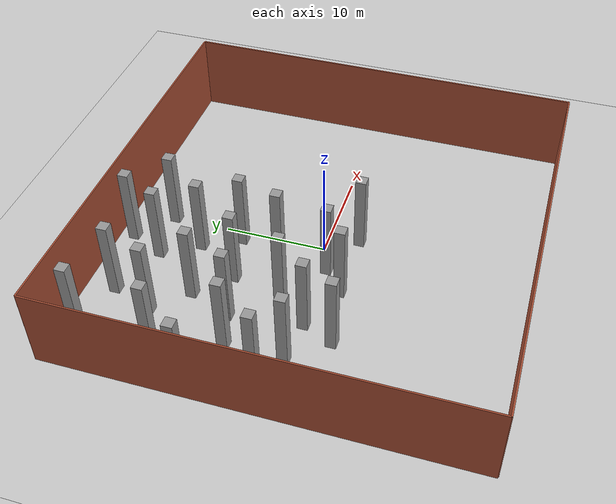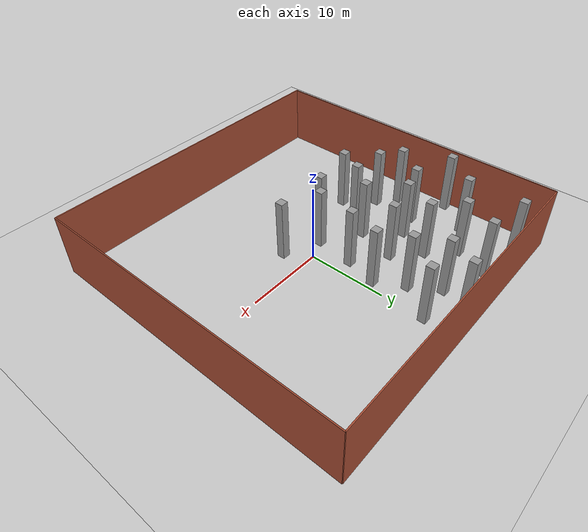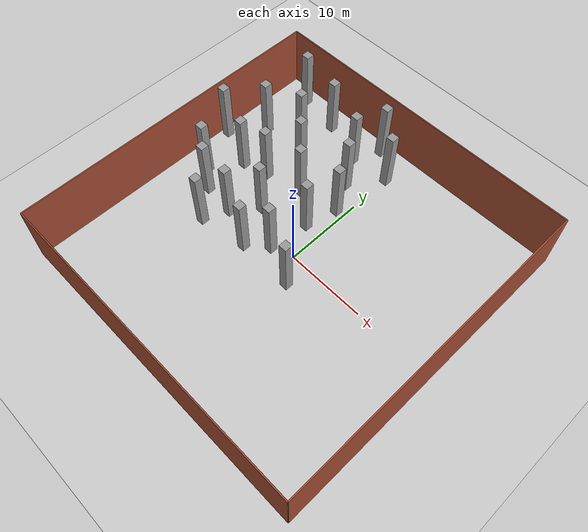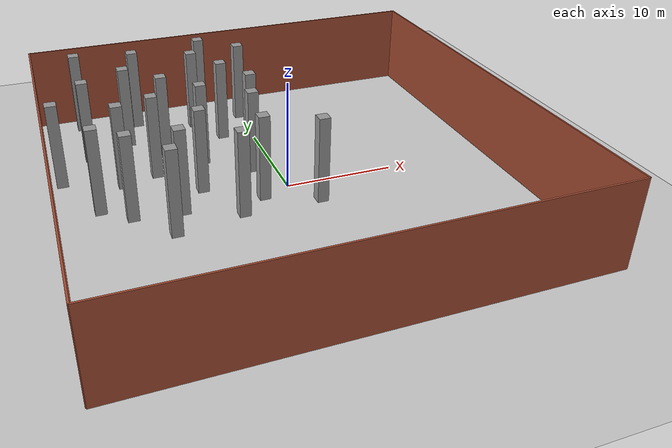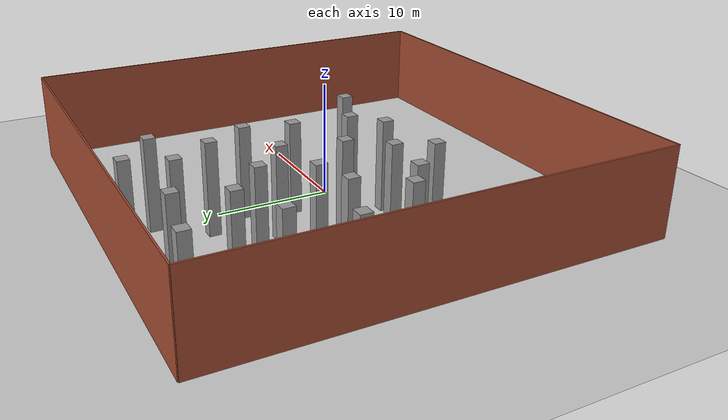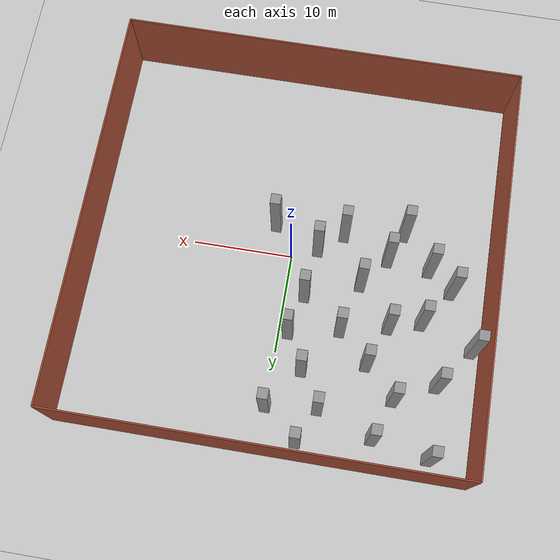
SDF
<sdf version="1.7">
 <world name="default">
  <model name="ground_plane">
   <static>1</static>
   <link name="link">
    <collision name="collision">
     <geometry><plane><normal>0 0 1</normal><size>100 100</size></plane></geometry>
     <surface>
      <contact><collide_bitmask>65535</collide_bitmask></contact>
      <friction><ode><mu>100</mu><mu2>50</mu2></ode></friction>
     </surface>
    </collision>
    <visual name="visual">
     <cast_shadows>0</cast_shadows>
     <geometry><plane><normal>0 0 1</normal><size>100 100</size></plane></geometry>
     <material>
      <script><uri>file://media/materials/scripts/gazebo.material</uri><name>Gazebo/Grey</name></script>
     </material>
    </visual>
   </link>
  </model>
  <model name="sim_room_square">
   <link name="Wall_14">
    <collision name="Wall_14_Collision">
     <geometry><box><size>40 0.15 8</size></box></geometry>
     <pose>0 0 4 0 -0 0</pose>
    </collision>
    <visual name="Wall_14_Visual">
     <pose>0 0 4 0 -0 0</pose>
     <geometry><box><size>40 0.15 8</size></box></geometry>
     <material>
      <script><uri>file://media/materials/scripts/gazebo.material</uri><name>Gazebo/Bricks</name></script>
      <ambient>1 1 1 1</ambient>
     </material>
     <meta><layer>0</layer></meta>
    </visual>
    <pose>20 -0 0 0 -0 -1.5708</pose>
   </link>
   <link name="Wall_15">
    <collision name="Wall_15_Collision">
     <geometry><box><size>40 0.15 8</size></box></geometry>
     <pose>0 0 4 0 -0 0</pose>
    </collision>
    <visual name="Wall_15_Visual">
     <pose>0 0 4 0 -0 0</pose>
     <geometry><box><size>40 0.15 8</size></box></geometry>
     <material>
      <script><uri>file://media/materials/scripts/gazebo.material</uri><name>Gazebo/Bricks</name></script>
      <ambient>1 1 1 1</ambient>
     </material>
     <meta><layer>0</layer></meta>
    </visual>
    <pose>0 -20 0 0 -0 3.14159</pose>
   </link>
   <link name="Wall_16">
    <collision name="Wall_16_Collision">
     <geometry><box><size>40 0.15 8</size></box></geometry>
     <pose>0 0 4 0 -0 0</pose>
    </collision>
    <visual name="Wall_16_Visual">
     <pose>0 0 4 0 -0 0</pose>
     <geometry><box><size>40 0.15 8</size></box></geometry>
     <material>
      <script><uri>file://media/materials/scripts/gazebo.material</uri><name>Gazebo/Bricks</name></script>
      <ambient>1 1 1 1</ambient>
     </material>
     <meta><layer>0</layer></meta>
    </visual>
    <pose>-20 -0 0 0 -0 1.5708</pose>
   </link>
   <link name="Wall_19">
    <collision name="Wall_19_Collision">
     <geometry><box><size>40 0.15 8</size></box></geometry>
     <pose>0 0 4 0 -0 0</pose>
    </collision>
    <visual name="Wall_19_Visual">
     <pose>0 0 4 0 -0 0</pose>
     <geometry><box><size>40 0.15 8</size></box></geometry>
     <material>
      <script><uri>file://media/materials/scripts/gazebo.material</uri><name>Gazebo/Bricks</name></script>
      <ambient>1 1 1 1</ambient>
     </material>
     <meta><layer>0</layer></meta>
    </visual>
    <pose>0 20 0 0 -0 0</pose>
   </link>
   <static>1</static>
  </model>
  <model name="unit_box_static">
   <link name="link">
    <inertial>
     <mass>1</mass>
     <inertia>
      <ixx>0.166667</ixx>
      <ixy>0</ixy>
      <ixz>0</ixz>
      <iyy>0.166667</iyy>
      <iyz>0</iyz>
      <izz>0.166667</izz>
     </inertia>
    </inertial>
    <visual name="visual">
     <geometry><box><size>1 1 8</size></box></geometry>
     <material>
      <script><name>Gazebo/Grey</name><uri>file://media/materials/scripts/gazebo.material</uri></script>
      <shader type="pixel"/>
     </material>
    </visual>
    <collision name="collision">
     <geometry><box><size>1 1 8</size></box></geometry>
     <surface>
      <friction>
       <ode><mu>1</mu><mu2>1</mu2><fdir1>0 0 0</fdir1><slip1>0</slip1><slip2>0</slip2></ode>
       <torsional>
        <coefficient>1</coefficient>
        <patch_radius>0</patch_radius>
        <surface_radius>0</surface_radius>
        <use_patch_radius>1</use_patch_radius>
        <ode><slip>0</slip></ode>
       </torsional>
      </friction>
      <bounce><restitution_coefficient>0</restitution_coefficient><threshold>1e+06</threshold></bounce>
      <contact>
       <collide_without_contact>0</collide_without_contact>
       <collide_without_contact_bitmask>1</collide_without_contact_bitmask>
       <collide_bitmask>1</collide_bitmask>
       <ode>
        <soft_cfm>0</soft_cfm>
        <soft_erp>0.2</soft_erp>
        <kp>1e+13</kp>
        <kd>1</kd>
        <max_vel>0.01</max_vel>
        <min_depth>0</min_depth>
       </ode>
       <bullet>
        <split_impulse>1</split_impulse>
        <split_impulse_penetration_threshold>-0.01</split_impulse_penetration_threshold>
        <soft_cfm>0</soft_cfm>
        <soft_erp>0.2</soft_erp>
        <kp>1e+13</kp>
        <kd>1</kd>
       </bullet>
      </contact>
     </surface>
    </collision>
   </link>
   <static>1</static>
   <pose>-2.89298 11.5277 4 0 -0 0</pose>
  </model>
  <model name="unit_box_static_clone">
   <link name="link">
    <inertial>
     <mass>1</mass>
     <inertia>
      <ixx>0.166667</ixx>
      <ixy>0</ixy>
      <ixz>0</ixz>
      <iyy>0.166667</iyy>
      <iyz>0</iyz>
      <izz>0.166667</izz>
     </inertia>
    </inertial>
    <visual name="visual">
     <geometry><box><size>1 1 8</size></box></geometry>
     <material>
      <script><name>Gazebo/Grey</name><uri>file://media/materials/scripts/gazebo.material</uri></script>
      <shader type="pixel"/>
     </material>
    </visual>
    <collision name="collision">
     <geometry><box><size>1 1 8</size></box></geometry>
     <surface>
      <friction>
       <ode><mu>1</mu><mu2>1</mu2><fdir1>0 0 0</fdir1><slip1>0</slip1><slip2>0</slip2></ode>
       <torsional>
        <coefficient>1</coefficient>
        <patch_radius>0</patch_radius>
        <surface_radius>0</surface_radius>
        <use_patch_radius>1</use_patch_radius>
        <ode><slip>0</slip></ode>
       </torsional>
      </friction>
      <bounce><restitution_coefficient>0</restitution_coefficient><threshold>1e+06</threshold></bounce>
      <contact>
       <collide_without_contact>0</collide_without_contact>
       <collide_without_contact_bitmask>1</collide_without_contact_bitmask>
       <collide_bitmask>1</collide_bitmask>
       <ode>
        <soft_cfm>0</soft_cfm>
        <soft_erp>0.2</soft_erp>
        <kp>1e+13</kp>
        <kd>1</kd>
        <max_vel>0.01</max_vel>
        <min_depth>0</min_depth>
       </ode>
       <bullet>
        <split_impulse>1</split_impulse>
        <split_impulse_penetration_threshold>-0.01</split_impulse_penetration_threshold>
        <soft_cfm>0</soft_cfm>
        <soft_erp>0.2</soft_erp>
        <kp>1e+13</kp>
        <kd>1</kd>
       </bullet>
      </contact>
     </surface>
    </collision>
   </link>
   <static>1</static>
   <pose>-1 8 4 0 -0 0</pose>
  </model>
  <model name="unit_box_static_clone_0">
   <link name="link">
    <inertial>
     <mass>1</mass>
     <inertia>
      <ixx>0.166667</ixx>
      <ixy>0</ixy>
      <ixz>0</ixz>
      <iyy>0.166667</iyy>
      <iyz>0</iyz>
      <izz>0.166667</izz>
     </inertia>
    </inertial>
    <visual name="visual">
     <geometry><box><size>1 1 8</size></box></geometry>
     <material>
      <script><name>Gazebo/Grey</name><uri>file://media/materials/scripts/gazebo.material</uri></script>
      <shader type="pixel"/>
     </material>
    </visual>
    <collision name="collision">
     <geometry><box><size>1 1 8</size></box></geometry>
     <surface>
      <friction>
       <ode><mu>1</mu><mu2>1</mu2><fdir1>0 0 0</fdir1><slip1>0</slip1><slip2>0</slip2></ode>
       <torsional>
        <coefficient>1</coefficient>
        <patch_radius>0</patch_radius>
        <surface_radius>0</surface_radius>
        <use_patch_radius>1</use_patch_radius>
        <ode><slip>0</slip></ode>
       </torsional>
      </friction>
      <bounce><restitution_coefficient>0</restitution_coefficient><threshold>1e+06</threshold></bounce>
      <contact>
       <collide_without_contact>0</collide_without_contact>
       <collide_without_contact_bitmask>1</collide_without_contact_bitmask>
       <collide_bitmask>1</collide_bitmask>
       <ode>
        <soft_cfm>0</soft_cfm>
        <soft_erp>0.2</soft_erp>
        <kp>1e+13</kp>
        <kd>1</kd>
        <max_vel>0.01</max_vel>
        <min_depth>0</min_depth>
       </ode>
       <bullet>
        <split_impulse>1</split_impulse>
        <split_impulse_penetration_threshold>-0.01</split_impulse_penetration_threshold>
        <soft_cfm>0</soft_cfm>
        <soft_erp>0.2</soft_erp>
        <kp>1e+13</kp>
        <kd>1</kd>
       </bullet>
      </contact>
     </surface>
    </collision>
   </link>
   <static>1</static>
   <pose>-2 4 4 0 -0 0</pose>
  </model>
  <model name="unit_box_static_clone_1">
   <link name="link">
    <inertial>
     <mass>1</mass>
     <inertia>
      <ixx>0.166667</ixx>
      <ixy>0</ixy>
      <ixz>0</ixz>
      <iyy>0.166667</iyy>
      <iyz>0</iyz>
      <izz>0.166667</izz>
     </inertia>
    </inertial>
    <visual name="visual">
     <geometry><box><size>1 1 8</size></box></geometry>
     <material>
      <script><name>Gazebo/Grey</name><uri>file://media/materials/scripts/gazebo.material</uri></script>
      <shader type="pixel"/>
     </material>
    </visual>
    <collision name="collision">
     <geometry><box><size>1 1 8</size></box></geometry>
     <surface>
      <friction>
       <ode><mu>1</mu><mu2>1</mu2><fdir1>0 0 0</fdir1><slip1>0</slip1><slip2>0</slip2></ode>
       <torsional>
        <coefficient>1</coefficient>
        <patch_radius>0</patch_radius>
        <surface_radius>0</surface_radius>
        <use_patch_radius>1</use_patch_radius>
        <ode><slip>0</slip></ode>
       </torsional>
      </friction>
      <bounce><restitution_coefficient>0</restitution_coefficient><threshold>1e+06</threshold></bounce>
      <contact>
       <collide_without_contact>0</collide_without_contact>
       <collide_without_contact_bitmask>1</collide_without_contact_bitmask>
       <collide_bitmask>1</collide_bitmask>
       <ode>
        <soft_cfm>0</soft_cfm>
        <soft_erp>0.2</soft_erp>
        <kp>1e+13</kp>
        <kd>1</kd>
        <max_vel>0.01</max_vel>
        <min_depth>0</min_depth>
       </ode>
       <bullet>
        <split_impulse>1</split_impulse>
        <split_impulse_penetration_threshold>-0.01</split_impulse_penetration_threshold>
        <soft_cfm>0</soft_cfm>
        <soft_erp>0.2</soft_erp>
        <kp>1e+13</kp>
        <kd>1</kd>
       </bullet>
      </contact>
     </surface>
    </collision>
   </link>
   <static>1</static>
   <pose>-7.32735 2 4 0 -0 0</pose>
  </model>
  <model name="unit_box_static_clone_2">
   <link name="link">
    <inertial>
     <mass>1</mass>
     <inertia>
      <ixx>0.166667</ixx>
      <ixy>0</ixy>
      <ixz>0</ixz>
      <iyy>0.166667</iyy>
      <iyz>0</iyz>
      <izz>0.166667</izz>
     </inertia>
    </inertial>
    <visual name="visual">
     <geometry><box><size>1 1 8</size></box></geometry>
     <material>
      <script><name>Gazebo/Grey</name><uri>file://media/materials/scripts/gazebo.material</uri></script>
      <shader type="pixel"/>
     </material>
    </visual>
    <collision name="collision">
     <geometry><box><size>1 1 8</size></box></geometry>
     <surface>
      <friction>
       <ode><mu>1</mu><mu2>1</mu2><fdir1>0 0 0</fdir1><slip1>0</slip1><slip2>0</slip2></ode>
       <torsional>
        <coefficient>1</coefficient>
        <patch_radius>0</patch_radius>
        <surface_radius>0</surface_radius>
        <use_patch_radius>1</use_patch_radius>
        <ode><slip>0</slip></ode>
       </torsional>
      </friction>
      <bounce><restitution_coefficient>0</restitution_coefficient><threshold>1e+06</threshold></bounce>
      <contact>
       <collide_without_contact>0</collide_without_contact>
       <collide_without_contact_bitmask>1</collide_without_contact_bitmask>
       <collide_bitmask>1</collide_bitmask>
       <ode>
        <soft_cfm>0</soft_cfm>
        <soft_erp>0.2</soft_erp>
        <kp>1e+13</kp>
        <kd>1</kd>
        <max_vel>0.01</max_vel>
        <min_depth>0</min_depth>
       </ode>
       <bullet>
        <split_impulse>1</split_impulse>
        <split_impulse_penetration_threshold>-0.01</split_impulse_penetration_threshold>
        <soft_cfm>0</soft_cfm>
        <soft_erp>0.2</soft_erp>
        <kp>1e+13</kp>
        <kd>1</kd>
       </bullet>
      </contact>
     </surface>
    </collision>
   </link>
   <static>1</static>
   <pose>-10.6403 5.9324 4 0 -0 0</pose>
  </model>
  <model name="unit_box_static_clone_3">
   <link name="link">
    <inertial>
     <mass>1</mass>
     <inertia>
      <ixx>0.166667</ixx>
      <ixy>0</ixy>
      <ixz>0</ixz>
      <iyy>0.166667</iyy>
      <iyz>0</iyz>
      <izz>0.166667</izz>
     </inertia>
    </inertial>
    <visual name="visual">
     <geometry><box><size>1 1 8</size></box></geometry>
     <material>
      <script><name>Gazebo/Grey</name><uri>file://media/materials/scripts/gazebo.material</uri></script>
      <shader type="pixel"/>
     </material>
    </visual>
    <collision name="collision">
     <geometry><box><size>1 1 8</size></box></geometry>
     <surface>
      <friction>
       <ode><mu>1</mu><mu2>1</mu2><fdir1>0 0 0</fdir1><slip1>0</slip1><slip2>0</slip2></ode>
       <torsional>
        <coefficient>1</coefficient>
        <patch_radius>0</patch_radius>
        <surface_radius>0</surface_radius>
        <use_patch_radius>1</use_patch_radius>
        <ode><slip>0</slip></ode>
       </torsional>
      </friction>
      <bounce><restitution_coefficient>0</restitution_coefficient><threshold>1e+06</threshold></bounce>
      <contact>
       <collide_without_contact>0</collide_without_contact>
       <collide_without_contact_bitmask>1</collide_without_contact_bitmask>
       <collide_bitmask>1</collide_bitmask>
       <ode>
        <soft_cfm>0</soft_cfm>
        <soft_erp>0.2</soft_erp>
        <kp>1e+13</kp>
        <kd>1</kd>
        <max_vel>0.01</max_vel>
        <min_depth>0</min_depth>
       </ode>
       <bullet>
        <split_impulse>1</split_impulse>
        <split_impulse_penetration_threshold>-0.01</split_impulse_penetration_threshold>
        <soft_cfm>0</soft_cfm>
        <soft_erp>0.2</soft_erp>
        <kp>1e+13</kp>
        <kd>1</kd>
       </bullet>
      </contact>
     </surface>
    </collision>
   </link>
   <static>1</static>
   <pose>-13.8066 5.02416 4 0 -0 0</pose>
  </model>
  <model name="unit_box_static_clone_4">
   <link name="link">
    <inertial>
     <mass>1</mass>
     <inertia>
      <ixx>0.166667</ixx>
      <ixy>0</ixy>
      <ixz>0</ixz>
      <iyy>0.166667</iyy>
      <iyz>0</iyz>
      <izz>0.166667</izz>
     </inertia>
    </inertial>
    <visual name="visual">
     <geometry><box><size>1 1 8</size></box></geometry>
     <material>
      <script><name>Gazebo/Grey</name><uri>file://media/materials/scripts/gazebo.material</uri></script>
      <shader type="pixel"/>
     </material>
    </visual>
    <collision name="collision">
     <geometry><box><size>1 1 8</size></box></geometry>
     <surface>
      <friction>
       <ode><mu>1</mu><mu2>1</mu2><fdir1>0 0 0</fdir1><slip1>0</slip1><slip2>0</slip2></ode>
       <torsional>
        <coefficient>1</coefficient>
        <patch_radius>0</patch_radius>
        <surface_radius>0</surface_radius>
        <use_patch_radius>1</use_patch_radius>
        <ode><slip>0</slip></ode>
       </torsional>
      </friction>
      <bounce><restitution_coefficient>0</restitution_coefficient><threshold>1e+06</threshold></bounce>
      <contact>
       <collide_without_contact>0</collide_without_contact>
       <collide_without_contact_bitmask>1</collide_without_contact_bitmask>
       <collide_bitmask>1</collide_bitmask>
       <ode>
        <soft_cfm>0</soft_cfm>
        <soft_erp>0.2</soft_erp>
        <kp>1e+13</kp>
        <kd>1</kd>
        <max_vel>0.01</max_vel>
        <min_depth>0</min_depth>
       </ode>
       <bullet>
        <split_impulse>1</split_impulse>
        <split_impulse_penetration_threshold>-0.01</split_impulse_penetration_threshold>
        <soft_cfm>0</soft_cfm>
        <soft_erp>0.2</soft_erp>
        <kp>1e+13</kp>
        <kd>1</kd>
       </bullet>
      </contact>
     </surface>
    </collision>
   </link>
   <static>1</static>
   <pose>-11 -4 4 0 -0 0</pose>
  </model>
  <model name="unit_box_static_clone_5">
   <link name="link">
    <inertial>
     <mass>1</mass>
     <inertia>
      <ixx>0.166667</ixx>
      <ixy>0</ixy>
      <ixz>0</ixz>
      <iyy>0.166667</iyy>
      <iyz>0</iyz>
      <izz>0.166667</izz>
     </inertia>
    </inertial>
    <visual name="visual">
     <geometry><box><size>1 1 8</size></box></geometry>
     <material>
      <script><name>Gazebo/Grey</name><uri>file://media/materials/scripts/gazebo.material</uri></script>
      <shader type="pixel"/>
     </material>
    </visual>
    <collision name="collision">
     <geometry><box><size>1 1 8</size></box></geometry>
     <surface>
      <friction>
       <ode><mu>1</mu><mu2>1</mu2><fdir1>0 0 0</fdir1><slip1>0</slip1><slip2>0</slip2></ode>
       <torsional>
        <coefficient>1</coefficient>
        <patch_radius>0</patch_radius>
        <surface_radius>0</surface_radius>
        <use_patch_radius>1</use_patch_radius>
        <ode><slip>0</slip></ode>
       </torsional>
      </friction>
      <bounce><restitution_coefficient>0</restitution_coefficient><threshold>1e+06</threshold></bounce>
      <contact>
       <collide_without_contact>0</collide_without_contact>
       <collide_without_contact_bitmask>1</collide_without_contact_bitmask>
       <collide_bitmask>1</collide_bitmask>
       <ode>
        <soft_cfm>0</soft_cfm>
        <soft_erp>0.2</soft_erp>
        <kp>1e+13</kp>
        <kd>1</kd>
        <max_vel>0.01</max_vel>
        <min_depth>0</min_depth>
       </ode>
       <bullet>
        <split_impulse>1</split_impulse>
        <split_impulse_penetration_threshold>-0.01</split_impulse_penetration_threshold>
        <soft_cfm>0</soft_cfm>
        <soft_erp>0.2</soft_erp>
        <kp>1e+13</kp>
        <kd>1</kd>
       </bullet>
      </contact>
     </surface>
    </collision>
   </link>
   <static>1</static>
   <pose>-9.69968 -1.00435 4 0 -0 0</pose>
  </model>
  <model name="unit_box_static_clone_6">
   <link name="link">
    <inertial>
     <mass>1</mass>
     <inertia>
      <ixx>0.166667</ixx>
      <ixy>0</ixy>
      <ixz>0</ixz>
      <iyy>0.166667</iyy>
      <iyz>0</iyz>
      <izz>0.166667</izz>
     </inertia>
    </inertial>
    <visual name="visual">
     <geometry><box><size>1 1 8</size></box></geometry>
     <material>
      <script><name>Gazebo/Grey</name><uri>file://media/materials/scripts/gazebo.material</uri></script>
      <shader type="pixel"/>
     </material>
    </visual>
    <collision name="collision">
     <geometry><box><size>1 1 8</size></box></geometry>
     <surface>
      <friction>
       <ode><mu>1</mu><mu2>1</mu2><fdir1>0 0 0</fdir1><slip1>0</slip1><slip2>0</slip2></ode>
       <torsional>
        <coefficient>1</coefficient>
        <patch_radius>0</patch_radius>
        <surface_radius>0</surface_radius>
        <use_patch_radius>1</use_patch_radius>
        <ode><slip>0</slip></ode>
       </torsional>
      </friction>
      <bounce><restitution_coefficient>0</restitution_coefficient><threshold>1e+06</threshold></bounce>
      <contact>
       <collide_without_contact>0</collide_without_contact>
       <collide_without_contact_bitmask>1</collide_without_contact_bitmask>
       <collide_bitmask>1</collide_bitmask>
       <ode>
        <soft_cfm>0</soft_cfm>
        <soft_erp>0.2</soft_erp>
        <kp>1e+13</kp>
        <kd>1</kd>
        <max_vel>0.01</max_vel>
        <min_depth>0</min_depth>
       </ode>
       <bullet>
        <split_impulse>1</split_impulse>
        <split_impulse_penetration_threshold>-0.01</split_impulse_penetration_threshold>
        <soft_cfm>0</soft_cfm>
        <soft_erp>0.2</soft_erp>
        <kp>1e+13</kp>
        <kd>1</kd>
       </bullet>
      </contact>
     </surface>
    </collision>
   </link>
   <static>1</static>
   <pose>-5 -3 4 0 -0 0</pose>
  </model>
  <model name="unit_box_static_clone_7">
   <link name="link">
    <inertial>
     <mass>1</mass>
     <inertia>
      <ixx>0.166667</ixx>
      <ixy>0</ixy>
      <ixz>0</ixz>
      <iyy>0.166667</iyy>
      <iyz>0</iyz>
      <izz>0.166667</izz>
     </inertia>
    </inertial>
    <visual name="visual">
     <geometry><box><size>1 1 8</size></box></geometry>
     <material>
      <script><name>Gazebo/Grey</name><uri>file://media/materials/scripts/gazebo.material</uri></script>
      <shader type="pixel"/>
     </material>
    </visual>
    <collision name="collision">
     <geometry><box><size>1 1 8</size></box></geometry>
     <surface>
      <friction>
       <ode><mu>1</mu><mu2>1</mu2><fdir1>0 0 0</fdir1><slip1>0</slip1><slip2>0</slip2></ode>
       <torsional>
        <coefficient>1</coefficient>
        <patch_radius>0</patch_radius>
        <surface_radius>0</surface_radius>
        <use_patch_radius>1</use_patch_radius>
        <ode><slip>0</slip></ode>
       </torsional>
      </friction>
      <bounce><restitution_coefficient>0</restitution_coefficient><threshold>1e+06</threshold></bounce>
      <contact>
       <collide_without_contact>0</collide_without_contact>
       <collide_without_contact_bitmask>1</collide_without_contact_bitmask>
       <collide_bitmask>1</collide_bitmask>
       <ode>
        <soft_cfm>0</soft_cfm>
        <soft_erp>0.2</soft_erp>
        <kp>1e+13</kp>
        <kd>1</kd>
        <max_vel>0.01</max_vel>
        <min_depth>0</min_depth>
       </ode>
       <bullet>
        <split_impulse>1</split_impulse>
        <split_impulse_penetration_threshold>-0.01</split_impulse_penetration_threshold>
        <soft_cfm>0</soft_cfm>
        <soft_erp>0.2</soft_erp>
        <kp>1e+13</kp>
        <kd>1</kd>
       </bullet>
      </contact>
     </surface>
    </collision>
   </link>
   <static>1</static>
   <pose>-2.58663 -1 4 0 -0 0</pose>
  </model>
  <model name="unit_box_static_clone_31">
   <link name="link">
    <inertial>
     <mass>1</mass>
     <inertia>
      <ixx>0.166667</ixx>
      <ixy>0</ixy>
      <ixz>0</ixz>
      <iyy>0.166667</iyy>
      <iyz>0</iyz>
      <izz>0.166667</izz>
     </inertia>
    </inertial>
    <visual name="visual">
     <geometry><box><size>1 1 8</size></box></geometry>
     <material>
      <script><name>Gazebo/Grey</name><uri>file://media/materials/scripts/gazebo.material</uri></script>
      <shader type="pixel"/>
     </material>
    </visual>
    <collision name="collision">
     <geometry><box><size>1 1 8</size></box></geometry>
     <surface>
      <friction>
       <ode><mu>1</mu><mu2>1</mu2><fdir1>0 0 0</fdir1><slip1>0</slip1><slip2>0</slip2></ode>
       <torsional>
        <coefficient>1</coefficient>
        <patch_radius>0</patch_radius>
        <surface_radius>0</surface_radius>
        <use_patch_radius>1</use_patch_radius>
        <ode><slip>0</slip></ode>
       </torsional>
      </friction>
      <bounce><restitution_coefficient>0</restitution_coefficient><threshold>1e+06</threshold></bounce>
      <contact>
       <collide_without_contact>0</collide_without_contact>
       <collide_without_contact_bitmask>1</collide_without_contact_bitmask>
       <collide_bitmask>1</collide_bitmask>
       <ode>
        <soft_cfm>0</soft_cfm>
        <soft_erp>0.2</soft_erp>
        <kp>1e+13</kp>
        <kd>1</kd>
        <max_vel>0.01</max_vel>
        <min_depth>0</min_depth>
       </ode>
       <bullet>
        <split_impulse>1</split_impulse>
        <split_impulse_penetration_threshold>-0.01</split_impulse_penetration_threshold>
        <soft_cfm>0</soft_cfm>
        <soft_erp>0.2</soft_erp>
        <kp>1e+13</kp>
        <kd>1</kd>
       </bullet>
      </contact>
     </surface>
    </collision>
   </link>
   <static>1</static>
   <pose>-5 15 4 0 -0 0</pose>
  </model>
  <model name="unit_box_static_clone_32">
   <link name="link">
    <inertial>
     <mass>1</mass>
     <inertia>
      <ixx>0.166667</ixx>
      <ixy>0</ixy>
      <ixz>0</ixz>
      <iyy>0.166667</iyy>
      <iyz>0</iyz>
      <izz>0.166667</izz>
     </inertia>
    </inertial>
    <visual name="visual">
     <geometry><box><size>1 1 8</size></box></geometry>
     <material>
      <script><name>Gazebo/Grey</name><uri>file://media/materials/scripts/gazebo.material</uri></script>
      <shader type="pixel"/>
     </material>
    </visual>
    <collision name="collision">
     <geometry><box><size>1 1 8</size></box></geometry>
     <surface>
      <friction>
       <ode><mu>1</mu><mu2>1</mu2><fdir1>0 0 0</fdir1><slip1>0</slip1><slip2>0</slip2></ode>
       <torsional>
        <coefficient>1</coefficient>
        <patch_radius>0</patch_radius>
        <surface_radius>0</surface_radius>
        <use_patch_radius>1</use_patch_radius>
        <ode><slip>0</slip></ode>
       </torsional>
      </friction>
      <bounce><restitution_coefficient>0</restitution_coefficient><threshold>1e+06</threshold></bounce>
      <contact>
       <collide_without_contact>0</collide_without_contact>
       <collide_without_contact_bitmask>1</collide_without_contact_bitmask>
       <collide_bitmask>1</collide_bitmask>
       <ode>
        <soft_cfm>0</soft_cfm>
        <soft_erp>0.2</soft_erp>
        <kp>1e+13</kp>
        <kd>1</kd>
        <max_vel>0.01</max_vel>
        <min_depth>0</min_depth>
       </ode>
       <bullet>
        <split_impulse>1</split_impulse>
        <split_impulse_penetration_threshold>-0.01</split_impulse_penetration_threshold>
        <soft_cfm>0</soft_cfm>
        <soft_erp>0.2</soft_erp>
        <kp>1e+13</kp>
        <kd>1</kd>
       </bullet>
      </contact>
     </surface>
    </collision>
   </link>
   <static>1</static>
   <pose>-12 13 4 0 -0 0</pose>
  </model>
  <model name="unit_box_static_clone_33">
   <link name="link">
    <inertial>
     <mass>1</mass>
     <inertia>
      <ixx>0.166667</ixx>
      <ixy>0</ixy>
      <ixz>0</ixz>
      <iyy>0.166667</iyy>
      <iyz>0</iyz>
      <izz>0.166667</izz>
     </inertia>
    </inertial>
    <visual name="visual">
     <geometry><box><size>1 1 8</size></box></geometry>
     <material>
      <script><name>Gazebo/Grey</name><uri>file://media/materials/scripts/gazebo.material</uri></script>
      <shader type="pixel"/>
     </material>
    </visual>
    <collision name="collision">
     <geometry><box><size>1 1 8</size></box></geometry>
     <surface>
      <friction>
       <ode><mu>1</mu><mu2>1</mu2><fdir1>0 0 0</fdir1><slip1>0</slip1><slip2>0</slip2></ode>
       <torsional>
        <coefficient>1</coefficient>
        <patch_radius>0</patch_radius>
        <surface_radius>0</surface_radius>
        <use_patch_radius>1</use_patch_radius>
        <ode><slip>0</slip></ode>
       </torsional>
      </friction>
      <bounce><restitution_coefficient>0</restitution_coefficient><threshold>1e+06</threshold></bounce>
      <contact>
       <collide_without_contact>0</collide_without_contact>
       <collide_without_contact_bitmask>1</collide_without_contact_bitmask>
       <collide_bitmask>1</collide_bitmask>
       <ode>
        <soft_cfm>0</soft_cfm>
        <soft_erp>0.2</soft_erp>
        <kp>1e+13</kp>
        <kd>1</kd>
        <max_vel>0.01</max_vel>
        <min_depth>0</min_depth>
       </ode>
       <bullet>
        <split_impulse>1</split_impulse>
        <split_impulse_penetration_threshold>-0.01</split_impulse_penetration_threshold>
        <soft_cfm>0</soft_cfm>
        <soft_erp>0.2</soft_erp>
        <kp>1e+13</kp>
        <kd>1</kd>
       </bullet>
      </contact>
     </surface>
    </collision>
   </link>
   <static>1</static>
   <pose>-16 11 4 0 -0 0</pose>
  </model>
  <model name="unit_box_static_clone_34">
   <link name="link">
    <inertial>
     <mass>1</mass>
     <inertia>
      <ixx>0.166667</ixx>
      <ixy>0</ixy>
      <ixz>0</ixz>
      <iyy>0.166667</iyy>
      <iyz>0</iyz>
      <izz>0.166667</izz>
     </inertia>
    </inertial>
    <visual name="visual">
     <geometry><box><size>1 1 8</size></box></geometry>
     <material>
      <script><name>Gazebo/Grey</name><uri>file://media/materials/scripts/gazebo.material</uri></script>
      <shader type="pixel"/>
     </material>
    </visual>
    <collision name="collision">
     <geometry><box><size>1 1 8</size></box></geometry>
     <surface>
      <friction>
       <ode><mu>1</mu><mu2>1</mu2><fdir1>0 0 0</fdir1><slip1>0</slip1><slip2>0</slip2></ode>
       <torsional>
        <coefficient>1</coefficient>
        <patch_radius>0</patch_radius>
        <surface_radius>0</surface_radius>
        <use_patch_radius>1</use_patch_radius>
        <ode><slip>0</slip></ode>
       </torsional>
      </friction>
      <bounce><restitution_coefficient>0</restitution_coefficient><threshold>1e+06</threshold></bounce>
      <contact>
       <collide_without_contact>0</collide_without_contact>
       <collide_without_contact_bitmask>1</collide_without_contact_bitmask>
       <collide_bitmask>1</collide_bitmask>
       <ode>
        <soft_cfm>0</soft_cfm>
        <soft_erp>0.2</soft_erp>
        <kp>1e+13</kp>
        <kd>1</kd>
        <max_vel>0.01</max_vel>
        <min_depth>0</min_depth>
       </ode>
       <bullet>
        <split_impulse>1</split_impulse>
        <split_impulse_penetration_threshold>-0.01</split_impulse_penetration_threshold>
        <soft_cfm>0</soft_cfm>
        <soft_erp>0.2</soft_erp>
        <kp>1e+13</kp>
        <kd>1</kd>
       </bullet>
      </contact>
     </surface>
    </collision>
   </link>
   <static>1</static>
   <pose>-16.3538 1.35761 4 0 -0 0</pose>
  </model>
  <model name="unit_box_static_clone_43">
   <link name="link">
    <inertial>
     <mass>1</mass>
     <inertia>
      <ixx>0.166667</ixx>
      <ixy>0</ixy>
      <ixz>0</ixz>
      <iyy>0.166667</iyy>
      <iyz>0</iyz>
      <izz>0.166667</izz>
     </inertia>
    </inertial>
    <visual name="visual">
     <geometry><box><size>1 1 8</size></box></geometry>
     <material>
      <script><name>Gazebo/Grey</name><uri>file://media/materials/scripts/gazebo.material</uri></script>
      <shader type="pixel"/>
     </material>
    </visual>
    <collision name="collision">
     <geometry><box><size>1 1 8</size></box></geometry>
     <surface>
      <friction>
       <ode><mu>1</mu><mu2>1</mu2><fdir1>0 0 0</fdir1><slip1>0</slip1><slip2>0</slip2></ode>
       <torsional>
        <coefficient>1</coefficient>
        <patch_radius>0</patch_radius>
        <surface_radius>0</surface_radius>
        <use_patch_radius>1</use_patch_radius>
        <ode><slip>0</slip></ode>
       </torsional>
      </friction>
      <bounce><restitution_coefficient>0</restitution_coefficient><threshold>1e+06</threshold></bounce>
      <contact>
       <collide_without_contact>0</collide_without_contact>
       <collide_without_contact_bitmask>1</collide_without_contact_bitmask>
       <collide_bitmask>1</collide_bitmask>
       <ode>
        <soft_cfm>0</soft_cfm>
        <soft_erp>0.2</soft_erp>
        <kp>1e+13</kp>
        <kd>1</kd>
        <max_vel>0.01</max_vel>
        <min_depth>0</min_depth>
       </ode>
       <bullet>
        <split_impulse>1</split_impulse>
        <split_impulse_penetration_threshold>-0.01</split_impulse_penetration_threshold>
        <soft_cfm>0</soft_cfm>
        <soft_erp>0.2</soft_erp>
        <kp>1e+13</kp>
        <kd>1</kd>
       </bullet>
      </contact>
     </surface>
    </collision>
   </link>
   <static>1</static>
   <pose>0 15.5049 4 0 -0 0</pose>
  </model>
  <model name="unit_box_static_clone_55">
   <link name="link">
    <inertial>
     <mass>1</mass>
     <inertia>
      <ixx>0.166667</ixx>
      <ixy>0</ixy>
      <ixz>0</ixz>
      <iyy>0.166667</iyy>
      <iyz>0</iyz>
      <izz>0.166667</izz>
     </inertia>
    </inertial>
    <visual name="visual">
     <geometry><box><size>1 1 8</size></box></geometry>
     <material>
      <script><name>Gazebo/Grey</name><uri>file://media/materials/scripts/gazebo.material</uri></script>
      <shader type="pixel"/>
     </material>
    </visual>
    <collision name="collision">
     <geometry><box><size>1 1 8</size></box></geometry>
     <surface>
      <friction>
       <ode><mu>1</mu><mu2>1</mu2><fdir1>0 0 0</fdir1><slip1>0</slip1><slip2>0</slip2></ode>
       <torsional>
        <coefficient>1</coefficient>
        <patch_radius>0</patch_radius>
        <surface_radius>0</surface_radius>
        <use_patch_radius>1</use_patch_radius>
        <ode><slip>0</slip></ode>
       </torsional>
      </friction>
      <bounce><restitution_coefficient>0</restitution_coefficient><threshold>1e+06</threshold></bounce>
      <contact>
       <collide_without_contact>0</collide_without_contact>
       <collide_without_contact_bitmask>1</collide_without_contact_bitmask>
       <collide_bitmask>1</collide_bitmask>
       <ode>
        <soft_cfm>0</soft_cfm>
        <soft_erp>0.2</soft_erp>
        <kp>1e+13</kp>
        <kd>1</kd>
        <max_vel>0.01</max_vel>
        <min_depth>0</min_depth>
       </ode>
       <bullet>
        <split_impulse>1</split_impulse>
        <split_impulse_penetration_threshold>-0.01</split_impulse_penetration_threshold>
        <soft_cfm>0</soft_cfm>
        <soft_erp>0.2</soft_erp>
        <kp>1e+13</kp>
        <kd>1</kd>
       </bullet>
      </contact>
     </surface>
    </collision>
   </link>
   <static>1</static>
   <pose>-9 10 4 0 -0 0</pose>
  </model>
  <model name="unit_box_static_clone_56">
   <link name="link">
    <inertial>
     <mass>1</mass>
     <inertia>
      <ixx>0.166667</ixx>
      <ixy>0</ixy>
      <ixz>0</ixz>
      <iyy>0.166667</iyy>
      <iyz>0</iyz>
      <izz>0.166667</izz>
     </inertia>
    </inertial>
    <visual name="visual">
     <geometry><box><size>1 1 8</size></box></geometry>
     <material>
      <script><name>Gazebo/Grey</name><uri>file://media/materials/scripts/gazebo.material</uri></script>
      <shader type="pixel"/>
     </material>
    </visual>
    <collision name="collision">
     <geometry><box><size>1 1 8</size></box></geometry>
     <surface>
      <friction>
       <ode><mu>1</mu><mu2>1</mu2><fdir1>0 0 0</fdir1><slip1>0</slip1><slip2>0</slip2></ode>
       <torsional>
        <coefficient>1</coefficient>
        <patch_radius>0</patch_radius>
        <surface_radius>0</surface_radius>
        <use_patch_radius>1</use_patch_radius>
        <ode><slip>0</slip></ode>
       </torsional>
      </friction>
      <bounce><restitution_coefficient>0</restitution_coefficient><threshold>1e+06</threshold></bounce>
      <contact>
       <collide_without_contact>0</collide_without_contact>
       <collide_without_contact_bitmask>1</collide_without_contact_bitmask>
       <collide_bitmask>1</collide_bitmask>
       <ode>
        <soft_cfm>0</soft_cfm>
        <soft_erp>0.2</soft_erp>
        <kp>1e+13</kp>
        <kd>1</kd>
        <max_vel>0.01</max_vel>
        <min_depth>0</min_depth>
       </ode>
       <bullet>
        <split_impulse>1</split_impulse>
        <split_impulse_penetration_threshold>-0.01</split_impulse_penetration_threshold>
        <soft_cfm>0</soft_cfm>
        <soft_erp>0.2</soft_erp>
        <kp>1e+13</kp>
        <kd>1</kd>
       </bullet>
      </contact>
     </surface>
    </collision>
   </link>
   <static>1</static>
   <pose>-16 18 4 0 -0 0</pose>
  </model>
  <model name="unit_box_static_clone_57">
   <link name="link">
    <inertial>
     <mass>1</mass>
     <inertia>
      <ixx>0.166667</ixx>
      <ixy>0</ixy>
      <ixz>0</ixz>
      <iyy>0.166667</iyy>
      <iyz>0</iyz>
      <izz>0.166667</izz>
     </inertia>
    </inertial>
    <visual name="visual">
     <geometry><box><size>1 1 8</size></box></geometry>
     <material>
      <script><name>Gazebo/Grey</name><uri>file://media/materials/scripts/gazebo.material</uri></script>
      <shader type="pixel"/>
     </material>
    </visual>
    <collision name="collision">
     <geometry><box><size>1 1 8</size></box></geometry>
     <surface>
      <friction>
       <ode><mu>1</mu><mu2>1</mu2><fdir1>0 0 0</fdir1><slip1>0</slip1><slip2>0</slip2></ode>
       <torsional>
        <coefficient>1</coefficient>
        <patch_radius>0</patch_radius>
        <surface_radius>0</surface_radius>
        <use_patch_radius>1</use_patch_radius>
        <ode><slip>0</slip></ode>
       </torsional>
      </friction>
      <bounce><restitution_coefficient>0</restitution_coefficient><threshold>1e+06</threshold></bounce>
      <contact>
       <collide_without_contact>0</collide_without_contact>
       <collide_without_contact_bitmask>1</collide_without_contact_bitmask>
       <collide_bitmask>1</collide_bitmask>
       <ode>
        <soft_cfm>0</soft_cfm>
        <soft_erp>0.2</soft_erp>
        <kp>1e+13</kp>
        <kd>1</kd>
        <max_vel>0.01</max_vel>
        <min_depth>0</min_depth>
       </ode>
       <bullet>
        <split_impulse>1</split_impulse>
        <split_impulse_penetration_threshold>-0.01</split_impulse_penetration_threshold>
        <soft_cfm>0</soft_cfm>
        <soft_erp>0.2</soft_erp>
        <kp>1e+13</kp>
        <kd>1</kd>
       </bullet>
      </contact>
     </surface>
    </collision>
   </link>
   <static>1</static>
   <pose>-3.42082 18.428 4 0 -0 0</pose>
  </model>
  <model name="unit_box_static_clone_58">
   <link name="link">
    <inertial>
     <mass>1</mass>
     <inertia>
      <ixx>0.166667</ixx>
      <ixy>0</ixy>
      <ixz>0</ixz>
      <iyy>0.166667</iyy>
      <iyz>0</iyz>
      <izz>0.166667</izz>
     </inertia>
    </inertial>
    <visual name="visual">
     <geometry><box><size>1 1 8</size></box></geometry>
     <material>
      <script><name>Gazebo/Grey</name><uri>file://media/materials/scripts/gazebo.material</uri></script>
      <shader type="pixel"/>
     </material>
    </visual>
    <collision name="collision">
     <geometry><box><size>1 1 8</size></box></geometry>
     <surface>
      <friction>
       <ode><mu>1</mu><mu2>1</mu2><fdir1>0 0 0</fdir1><slip1>0</slip1><slip2>0</slip2></ode>
       <torsional>
        <coefficient>1</coefficient>
        <patch_radius>0</patch_radius>
        <surface_radius>0</surface_radius>
        <use_patch_radius>1</use_patch_radius>
        <ode><slip>0</slip></ode>
       </torsional>
      </friction>
      <bounce><restitution_coefficient>0</restitution_coefficient><threshold>1e+06</threshold></bounce>
      <contact>
       <collide_without_contact>0</collide_without_contact>
       <collide_without_contact_bitmask>1</collide_without_contact_bitmask>
       <collide_bitmask>1</collide_bitmask>
       <ode>
        <soft_cfm>0</soft_cfm>
        <soft_erp>0.2</soft_erp>
        <kp>1e+13</kp>
        <kd>1</kd>
        <max_vel>0.01</max_vel>
        <min_depth>0</min_depth>
       </ode>
       <bullet>
        <split_impulse>1</split_impulse>
        <split_impulse_penetration_threshold>-0.01</split_impulse_penetration_threshold>
        <soft_cfm>0</soft_cfm>
        <soft_erp>0.2</soft_erp>
        <kp>1e+13</kp>
        <kd>1</kd>
       </bullet>
      </contact>
     </surface>
    </collision>
   </link>
   <static>1</static>
   <pose>-10.4838 17 4 0 -0 0</pose>
  </model>
  <model name="unit_box_static_clone_59">
   <link name="link">
    <inertial>
     <mass>1</mass>
     <inertia>
      <ixx>0.166667</ixx>
      <ixy>0</ixy>
      <ixz>0</ixz>
      <iyy>0.166667</iyy>
      <iyz>0</iyz>
      <izz>0.166667</izz>
     </inertia>
    </inertial>
    <visual name="visual">
     <geometry><box><size>1 1 8</size></box></geometry>
     <material>
      <script><name>Gazebo/Grey</name><uri>file://media/materials/scripts/gazebo.material</uri></script>
      <shader type="pixel"/>
     </material>
    </visual>
    <collision name="collision">
     <geometry><box><size>1 1 8</size></box></geometry>
     <surface>
      <friction>
       <ode><mu>1</mu><mu2>1</mu2><fdir1>0 0 0</fdir1><slip1>0</slip1><slip2>0</slip2></ode>
       <torsional>
        <coefficient>1</coefficient>
        <patch_radius>0</patch_radius>
        <surface_radius>0</surface_radius>
        <use_patch_radius>1</use_patch_radius>
        <ode><slip>0</slip></ode>
       </torsional>
      </friction>
      <bounce><restitution_coefficient>0</restitution_coefficient><threshold>1e+06</threshold></bounce>
      <contact>
       <collide_without_contact>0</collide_without_contact>
       <collide_without_contact_bitmask>1</collide_without_contact_bitmask>
       <collide_bitmask>1</collide_bitmask>
       <ode>
        <soft_cfm>0</soft_cfm>
        <soft_erp>0.2</soft_erp>
        <kp>1e+13</kp>
        <kd>1</kd>
        <max_vel>0.01</max_vel>
        <min_depth>0</min_depth>
       </ode>
       <bullet>
        <split_impulse>1</split_impulse>
        <split_impulse_penetration_threshold>-0.01</split_impulse_penetration_threshold>
        <soft_cfm>0</soft_cfm>
        <soft_erp>0.2</soft_erp>
        <kp>1e+13</kp>
        <kd>1</kd>
       </bullet>
      </contact>
     </surface>
    </collision>
   </link>
   <static>1</static>
   <pose>-13.9369 -0.571106 4 0 -0 0</pose>
  </model>
  <model name="unit_box_static_clone_61">
   <link name="link">
    <inertial>
     <mass>1</mass>
     <inertia>
      <ixx>0.166667</ixx>
      <ixy>0</ixy>
      <ixz>0</ixz>
      <iyy>0.166667</iyy>
      <iyz>0</iyz>
      <izz>0.166667</izz>
     </inertia>
    </inertial>
    <visual name="visual">
     <geometry><box><size>1 1 8</size></box></geometry>
     <material>
      <script><name>Gazebo/Grey</name><uri>file://media/materials/scripts/gazebo.material</uri></script>
      <shader type="pixel"/>
     </material>
    </visual>
    <collision name="collision">
     <geometry><box><size>1 1 8</size></box></geometry>
     <surface>
      <friction>
       <ode><mu>1</mu><mu2>1</mu2><fdir1>0 0 0</fdir1><slip1>0</slip1><slip2>0</slip2></ode>
       <torsional>
        <coefficient>1</coefficient>
        <patch_radius>0</patch_radius>
        <surface_radius>0</surface_radius>
        <use_patch_radius>1</use_patch_radius>
        <ode><slip>0</slip></ode>
       </torsional>
      </friction>
      <bounce><restitution_coefficient>0</restitution_coefficient><threshold>1e+06</threshold></bounce>
      <contact>
       <collide_without_contact>0</collide_without_contact>
       <collide_without_contact_bitmask>1</collide_without_contact_bitmask>
       <collide_bitmask>1</collide_bitmask>
       <ode>
        <soft_cfm>0</soft_cfm>
        <soft_erp>0.2</soft_erp>
        <kp>1e+13</kp>
        <kd>1</kd>
        <max_vel>0.01</max_vel>
        <min_depth>0</min_depth>
       </ode>
       <bullet>
        <split_impulse>1</split_impulse>
        <split_impulse_penetration_threshold>-0.01</split_impulse_penetration_threshold>
        <soft_cfm>0</soft_cfm>
        <soft_erp>0.2</soft_erp>
        <kp>1e+13</kp>
        <kd>1</kd>
       </bullet>
      </contact>
     </surface>
    </collision>
   </link>
   <static>1</static>
   <pose>-19 7 4 0 -0 0</pose>
  </model>
  <model name="unit_box_static_clone_66">
   <link name="link">
    <inertial>
     <mass>1</mass>
     <inertia>
      <ixx>0.166667</ixx>
      <ixy>0</ixy>
      <ixz>0</ixz>
      <iyy>0.166667</iyy>
      <iyz>0</iyz>
      <izz>0.166667</izz>
     </inertia>
    </inertial>
    <visual name="visual">
     <geometry><box><size>1 1 8</size></box></geometry>
     <material>
      <script><name>Gazebo/Grey</name><uri>file://media/materials/scripts/gazebo.material</uri></script>
      <shader type="pixel"/>
     </material>
    </visual>
    <collision name="collision">
     <geometry><box><size>1 1 8</size></box></geometry>
     <surface>
      <friction>
       <ode><mu>1</mu><mu2>1</mu2><fdir1>0 0 0</fdir1><slip1>0</slip1><slip2>0</slip2></ode>
       <torsional>
        <coefficient>1</coefficient>
        <patch_radius>0</patch_radius>
        <surface_radius>0</surface_radius>
        <use_patch_radius>1</use_patch_radius>
        <ode><slip>0</slip></ode>
       </torsional>
      </friction>
      <bounce><restitution_coefficient>0</restitution_coefficient><threshold>1e+06</threshold></bounce>
      <contact>
       <collide_without_contact>0</collide_without_contact>
       <collide_without_contact_bitmask>1</collide_without_contact_bitmask>
       <collide_bitmask>1</collide_bitmask>
       <ode>
        <soft_cfm>0</soft_cfm>
        <soft_erp>0.2</soft_erp>
        <kp>1e+13</kp>
        <kd>1</kd>
        <max_vel>0.01</max_vel>
        <min_depth>0</min_depth>
       </ode>
       <bullet>
        <split_impulse>1</split_impulse>
        <split_impulse_penetration_threshold>-0.01</split_impulse_penetration_threshold>
        <soft_cfm>0</soft_cfm>
        <soft_erp>0.2</soft_erp>
        <kp>1e+13</kp>
        <kd>1</kd>
       </bullet>
      </contact>
     </surface>
    </collision>
   </link>
   <static>1</static>
   <pose>2 -3 4 0 -0 0</pose>
  </model>
  <model name="unit_box_static_clone_67">
   <link name="link">
    <inertial>
     <mass>1</mass>
     <inertia>
      <ixx>0.166667</ixx>
      <ixy>0</ixy>
      <ixz>0</ixz>
      <iyy>0.166667</iyy>
      <iyz>0</iyz>
      <izz>0.166667</izz>
     </inertia>
    </inertial>
    <visual name="visual">
     <geometry><box><size>1 1 8</size></box></geometry>
     <material>
      <script><name>Gazebo/Grey</name><uri>file://media/materials/scripts/gazebo.material</uri></script>
      <shader type="pixel"/>
     </material>
    </visual>
    <collision name="collision">
     <geometry><box><size>1 1 8</size></box></geometry>
     <surface>
      <friction>
       <ode><mu>1</mu><mu2>1</mu2><fdir1>0 0 0</fdir1><slip1>0</slip1><slip2>0</slip2></ode>
       <torsional>
        <coefficient>1</coefficient>
        <patch_radius>0</patch_radius>
        <surface_radius>0</surface_radius>
        <use_patch_radius>1</use_patch_radius>
        <ode><slip>0</slip></ode>
       </torsional>
      </friction>
      <bounce><restitution_coefficient>0</restitution_coefficient><threshold>1e+06</threshold></bounce>
      <contact>
       <collide_without_contact>0</collide_without_contact>
       <collide_without_contact_bitmask>1</collide_without_contact_bitmask>
       <collide_bitmask>1</collide_bitmask>
       <ode>
        <soft_cfm>0</soft_cfm>
        <soft_erp>0.2</soft_erp>
        <kp>1e+13</kp>
        <kd>1</kd>
        <max_vel>0.01</max_vel>
        <min_depth>0</min_depth>
       </ode>
       <bullet>
        <split_impulse>1</split_impulse>
        <split_impulse_penetration_threshold>-0.01</split_impulse_penetration_threshold>
        <soft_cfm>0</soft_cfm>
        <soft_erp>0.2</soft_erp>
        <kp>1e+13</kp>
        <kd>1</kd>
       </bullet>
      </contact>
     </surface>
    </collision>
   </link>
   <static>1</static>
   <pose>-6 7 4 0 -0 0</pose>
  </model>
 </world>
</sdf>
